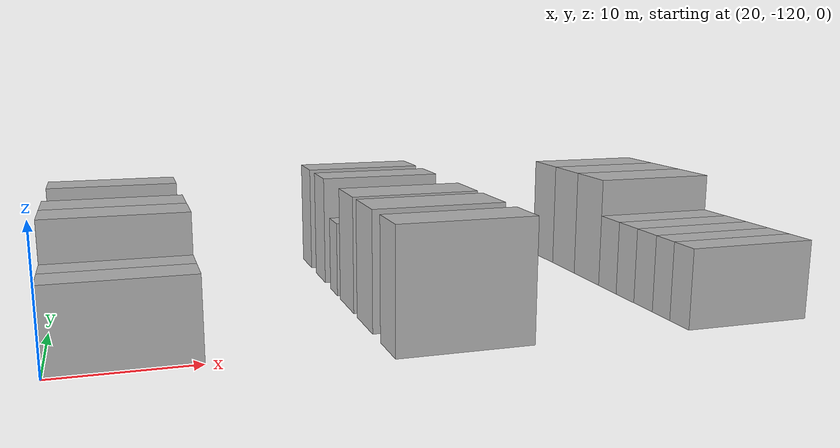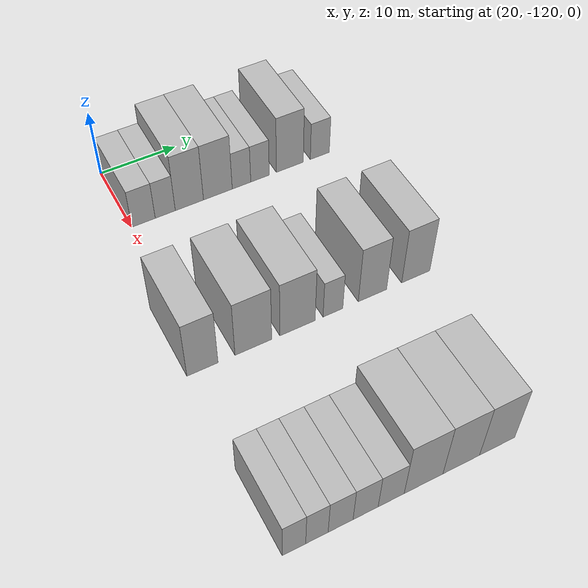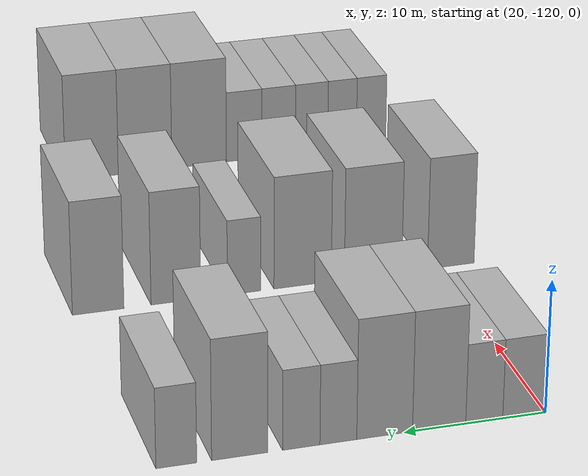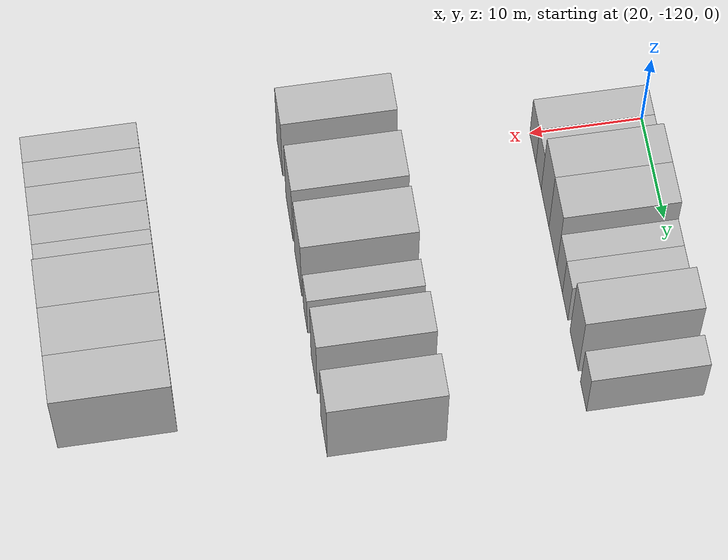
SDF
<sdf version="1.6">
 <world name="default">
  <model name="building_35">
   <static>1</static>
   <pose>25.0000 -118.4441 0 0.000000 0.000000 0.000000</pose>
   <link name="link">
    <pose>0 0 3.00 0 0 0</pose>
    <collision name="collision"><geometry><box><size>10.0000 2.9973 6.0000</size></box></geometry></collision>
    <visual name="visual">
     <cast_shadows>0</cast_shadows>
     <geometry><box><size>10.0000 2.9973 6.0000</size></box></geometry>
     <material>
      <script>
       <uri>model://HANNAS_wall/materials/scripts</uri>
       <uri>model://HANNAS_wall/materials/textures</uri>
       <name>vrc/HANNAS_wall</name>
      </script>
     </material>
    </visual>
   </link>
  </model>
  <model name="building_36">
   <static>1</static>
   <pose>25.0000 -115.6381 0 0.000000 0.000000 0.000000</pose>
   <link name="link">
    <pose>0 0 3.00 0 0 0</pose>
    <collision name="collision"><geometry><box><size>10.0000 2.6147 6.0000</size></box></geometry></collision>
    <visual name="visual">
     <cast_shadows>0</cast_shadows>
     <geometry><box><size>10.0000 2.6147 6.0000</size></box></geometry>
     <material>
      <script>
       <uri>model://HANNAS_wall/materials/scripts</uri>
       <uri>model://HANNAS_wall/materials/textures</uri>
       <name>vrc/HANNAS_wall</name>
      </script>
     </material>
    </visual>
   </link>
  </model>
  <model name="building_37">
   <static>1</static>
   <pose>25.0000 -112.4635 0 0.000000 0.000000 0.000000</pose>
   <link name="link">
    <pose>0 0 4.50 0 0 0</pose>
    <collision name="collision"><geometry><box><size>10.0000 3.7345 9.0000</size></box></geometry></collision>
    <visual name="visual">
     <cast_shadows>0</cast_shadows>
     <geometry><box><size>10.0000 3.7345 9.0000</size></box></geometry>
     <material>
      <script>
       <uri>model://HANNAS_wall/materials/scripts</uri>
       <uri>model://HANNAS_wall/materials/textures</uri>
       <name>vrc/HANNAS_wall</name>
      </script>
     </material>
    </visual>
   </link>
  </model>
  <model name="building_38">
   <static>1</static>
   <pose>25.0000 -108.6606 0 0.000000 0.000000 0.000000</pose>
   <link name="link">
    <pose>0 0 4.50 0 0 0</pose>
    <collision name="collision"><geometry><box><size>10.0000 3.8712 9.0000</size></box></geometry></collision>
    <visual name="visual">
     <cast_shadows>0</cast_shadows>
     <geometry><box><size>10.0000 3.8712 9.0000</size></box></geometry>
     <material>
      <script>
       <uri>model://HANNAS_wall/materials/scripts</uri>
       <uri>model://HANNAS_wall/materials/textures</uri>
       <name>vrc/HANNAS_wall</name>
      </script>
     </material>
    </visual>
   </link>
  </model>
  <model name="building_39">
   <static>1</static>
   <pose>25.0000 -105.4579 0 0.000000 0.000000 0.000000</pose>
   <link name="link">
    <pose>0 0 3.00 0 0 0</pose>
    <collision name="collision"><geometry><box><size>10.0000 2.5342 6.0000</size></box></geometry></collision>
    <visual name="visual">
     <cast_shadows>0</cast_shadows>
     <geometry><box><size>10.0000 2.5342 6.0000</size></box></geometry>
     <material>
      <script>
       <uri>model://HANNAS_wall/materials/scripts</uri>
       <uri>model://HANNAS_wall/materials/textures</uri>
       <name>vrc/HANNAS_wall</name>
      </script>
     </material>
    </visual>
   </link>
  </model>
  <model name="building_40">
   <static>1</static>
   <pose>25.0000 -102.9112 0 0.000000 0.000000 0.000000</pose>
   <link name="link">
    <pose>0 0 3.00 0 0 0</pose>
    <collision name="collision"><geometry><box><size>10.0000 2.5594 6.0000</size></box></geometry></collision>
    <visual name="visual">
     <cast_shadows>0</cast_shadows>
     <geometry><box><size>10.0000 2.5594 6.0000</size></box></geometry>
     <material>
      <script>
       <uri>model://HANNAS_wall/materials/scripts</uri>
       <uri>model://HANNAS_wall/materials/textures</uri>
       <name>vrc/HANNAS_wall</name>
      </script>
     </material>
    </visual>
   </link>
  </model>
  <model name="building_41">
   <static>1</static>
   <pose>25.0000 -98.7287 0 0.000000 0.000000 0.000000</pose>
   <link name="link">
    <pose>0 0 4.50 0 0 0</pose>
    <collision name="collision"><geometry><box><size>10.0000 3.8055 9.0000</size></box></geometry></collision>
    <visual name="visual">
     <cast_shadows>0</cast_shadows>
     <geometry><box><size>10.0000 3.8055 9.0000</size></box></geometry>
     <material>
      <script>
       <uri>model://HANNAS_wall/materials/scripts</uri>
       <uri>model://HANNAS_wall/materials/textures</uri>
       <name>vrc/HANNAS_wall</name>
      </script>
     </material>
    </visual>
   </link>
  </model>
  <model name="building_42">
   <static>1</static>
   <pose>25.0000 -94.4601 0 0.000000 0.000000 0.000000</pose>
   <link name="link">
    <pose>0 0 3.00 0 0 0</pose>
    <collision name="collision"><geometry><box><size>10.0000 2.7317 6.0000</size></box></geometry></collision>
    <visual name="visual">
     <cast_shadows>0</cast_shadows>
     <geometry><box><size>10.0000 2.7317 6.0000</size></box></geometry>
     <material>
      <script>
       <uri>model://HANNAS_wall/materials/scripts</uri>
       <uri>model://HANNAS_wall/materials/textures</uri>
       <name>vrc/HANNAS_wall</name>
      </script>
     </material>
    </visual>
   </link>
  </model>
  <model name="building_152">
   <static>1</static>
   <pose>47.0000 -120.8456 0 0.000000 0.000000 0.000000</pose>
   <link name="link">
    <pose>0 0 4.50 0 0 0</pose>
    <collision name="collision"><geometry><box><size>10.0000 3.6336 9.0000</size></box></geometry></collision>
    <visual name="visual">
     <cast_shadows>0</cast_shadows>
     <geometry><box><size>10.0000 3.6336 9.0000</size></box></geometry>
     <material>
      <script>
       <uri>model://HANNAS_wall/materials/scripts</uri>
       <uri>model://HANNAS_wall/materials/textures</uri>
       <name>vrc/HANNAS_wall</name>
      </script>
     </material>
    </visual>
   </link>
  </model>
  <model name="building_153">
   <static>1</static>
   <pose>47.0000 -114.8185 0 0.000000 0.000000 0.000000</pose>
   <link name="link">
    <pose>0 0 4.50 0 0 0</pose>
    <collision name="collision"><geometry><box><size>10.0000 4.4204 9.0000</size></box></geometry></collision>
    <visual name="visual">
     <cast_shadows>0</cast_shadows>
     <geometry><box><size>10.0000 4.4204 9.0000</size></box></geometry>
     <material>
      <script>
       <uri>model://HANNAS_wall/materials/scripts</uri>
       <uri>model://HANNAS_wall/materials/textures</uri>
       <name>vrc/HANNAS_wall</name>
      </script>
     </material>
    </visual>
   </link>
  </model>
  <model name="building_154">
   <static>1</static>
   <pose>47.0000 -109.4254 0 0.000000 0.000000 0.000000</pose>
   <link name="link">
    <pose>0 0 4.50 0 0 0</pose>
    <collision name="collision"><geometry><box><size>10.0000 4.3659 9.0000</size></box></geometry></collision>
    <visual name="visual">
     <cast_shadows>0</cast_shadows>
     <geometry><box><size>10.0000 4.3659 9.0000</size></box></geometry>
     <material>
      <script>
       <uri>model://HANNAS_wall/materials/scripts</uri>
       <uri>model://HANNAS_wall/materials/textures</uri>
       <name>vrc/HANNAS_wall</name>
      </script>
     </material>
    </visual>
   </link>
  </model>
  <model name="building_155">
   <static>1</static>
   <pose>47.0000 -104.9879 0 0.000000 0.000000 0.000000</pose>
   <link name="link">
    <pose>0 0 3.00 0 0 0</pose>
    <collision name="collision"><geometry><box><size>10.0000 2.5090 6.0000</size></box></geometry></collision>
    <visual name="visual">
     <cast_shadows>0</cast_shadows>
     <geometry><box><size>10.0000 2.5090 6.0000</size></box></geometry>
     <material>
      <script>
       <uri>model://HANNAS_wall/materials/scripts</uri>
       <uri>model://HANNAS_wall/materials/textures</uri>
       <name>vrc/HANNAS_wall</name>
      </script>
     </material>
    </visual>
   </link>
  </model>
  <model name="building_156">
   <static>1</static>
   <pose>47.0000 -99.8873 0 0.000000 0.000000 0.000000</pose>
   <link name="link">
    <pose>0 0 4.50 0 0 0</pose>
    <collision name="collision"><geometry><box><size>10.0000 3.6922 9.0000</size></box></geometry></collision>
    <visual name="visual">
     <cast_shadows>0</cast_shadows>
     <geometry><box><size>10.0000 3.6922 9.0000</size></box></geometry>
     <material>
      <script>
       <uri>model://HANNAS_wall/materials/scripts</uri>
       <uri>model://HANNAS_wall/materials/textures</uri>
       <name>vrc/HANNAS_wall</name>
      </script>
     </material>
    </visual>
   </link>
  </model>
  <model name="building_157">
   <static>1</static>
   <pose>47.0000 -94.1501 0 0.000000 0.000000 0.000000</pose>
   <link name="link">
    <pose>0 0 4.50 0 0 0</pose>
    <collision name="collision"><geometry><box><size>10.0000 3.7822 9.0000</size></box></geometry></collision>
    <visual name="visual">
     <cast_shadows>0</cast_shadows>
     <geometry><box><size>10.0000 3.7822 9.0000</size></box></geometry>
     <material>
      <script>
       <uri>model://HANNAS_wall/materials/scripts</uri>
       <uri>model://HANNAS_wall/materials/textures</uri>
       <name>vrc/HANNAS_wall</name>
      </script>
     </material>
    </visual>
   </link>
  </model>
  <model name="building_272">
   <static>1</static>
   <pose>69.0000 -121.5892 0 0.000000 0.000000 0.000000</pose>
   <link name="link">
    <pose>0 0 3.00 0 0 0</pose>
    <collision name="collision"><geometry><box><size>10.0000 2.4815 6.0000</size></box></geometry></collision>
    <visual name="visual">
     <cast_shadows>0</cast_shadows>
     <geometry><box><size>10.0000 2.4815 6.0000</size></box></geometry>
     <material>
      <script>
       <uri>model://HANNAS_wall/materials/scripts</uri>
       <uri>model://HANNAS_wall/materials/textures</uri>
       <name>vrc/HANNAS_wall</name>
      </script>
     </material>
    </visual>
   </link>
  </model>
  <model name="building_273">
   <static>1</static>
   <pose>69.0000 -119.1459 0 0.000000 0.000000 0.000000</pose>
   <link name="link">
    <pose>0 0 3.00 0 0 0</pose>
    <collision name="collision"><geometry><box><size>10.0000 2.4050 6.0000</size></box></geometry></collision>
    <visual name="visual">
     <cast_shadows>0</cast_shadows>
     <geometry><box><size>10.0000 2.4050 6.0000</size></box></geometry>
     <material>
      <script>
       <uri>model://HANNAS_wall/materials/scripts</uri>
       <uri>model://HANNAS_wall/materials/textures</uri>
       <name>vrc/HANNAS_wall</name>
      </script>
     </material>
    </visual>
   </link>
  </model>
  <model name="building_274">
   <static>1</static>
   <pose>69.0000 -116.5830 0 0.000000 0.000000 0.000000</pose>
   <link name="link">
    <pose>0 0 3.00 0 0 0</pose>
    <collision name="collision"><geometry><box><size>10.0000 2.7207 6.0000</size></box></geometry></collision>
    <visual name="visual">
     <cast_shadows>0</cast_shadows>
     <geometry><box><size>10.0000 2.7207 6.0000</size></box></geometry>
     <material>
      <script>
       <uri>model://HANNAS_wall/materials/scripts</uri>
       <uri>model://HANNAS_wall/materials/textures</uri>
       <name>vrc/HANNAS_wall</name>
      </script>
     </material>
    </visual>
   </link>
  </model>
  <model name="building_275">
   <static>1</static>
   <pose>69.0000 -113.8320 0 0.000000 0.000000 0.000000</pose>
   <link name="link">
    <pose>0 0 3.00 0 0 0</pose>
    <collision name="collision"><geometry><box><size>10.0000 2.7813 6.0000</size></box></geometry></collision>
    <visual name="visual">
     <cast_shadows>0</cast_shadows>
     <geometry><box><size>10.0000 2.7813 6.0000</size></box></geometry>
     <material>
      <script>
       <uri>model://HANNAS_wall/materials/scripts</uri>
       <uri>model://HANNAS_wall/materials/textures</uri>
       <name>vrc/HANNAS_wall</name>
      </script>
     </material>
    </visual>
   </link>
  </model>
  <model name="building_276">
   <static>1</static>
   <pose>69.0000 -110.9694 0 0.000000 0.000000 0.000000</pose>
   <link name="link">
    <pose>0 0 3.00 0 0 0</pose>
    <collision name="collision"><geometry><box><size>10.0000 2.9440 6.0000</size></box></geometry></collision>
    <visual name="visual">
     <cast_shadows>0</cast_shadows>
     <geometry><box><size>10.0000 2.9440 6.0000</size></box></geometry>
     <material>
      <script>
       <uri>model://HANNAS_wall/materials/scripts</uri>
       <uri>model://HANNAS_wall/materials/textures</uri>
       <name>vrc/HANNAS_wall</name>
      </script>
     </material>
    </visual>
   </link>
  </model>
  <model name="building_277">
   <static>1</static>
   <pose>69.0000 -107.2572 0 0.000000 0.000000 0.000000</pose>
   <link name="link">
    <pose>0 0 4.50 0 0 0</pose>
    <collision name="collision"><geometry><box><size>10.0000 4.4804 9.0000</size></box></geometry></collision>
    <visual name="visual">
     <cast_shadows>0</cast_shadows>
     <geometry><box><size>10.0000 4.4804 9.0000</size></box></geometry>
     <material>
      <script>
       <uri>model://HANNAS_wall/materials/scripts</uri>
       <uri>model://HANNAS_wall/materials/textures</uri>
       <name>vrc/HANNAS_wall</name>
      </script>
     </material>
    </visual>
   </link>
  </model>
  <model name="building_278">
   <static>1</static>
   <pose>69.0000 -102.8430 0 0.000000 0.000000 0.000000</pose>
   <link name="link">
    <pose>0 0 4.50 0 0 0</pose>
    <collision name="collision"><geometry><box><size>10.0000 4.3479 9.0000</size></box></geometry></collision>
    <visual name="visual">
     <cast_shadows>0</cast_shadows>
     <geometry><box><size>10.0000 4.3479 9.0000</size></box></geometry>
     <material>
      <script>
       <uri>model://HANNAS_wall/materials/scripts</uri>
       <uri>model://HANNAS_wall/materials/textures</uri>
       <name>vrc/HANNAS_wall</name>
      </script>
     </material>
    </visual>
   </link>
  </model>
  <model name="building_279">
   <static>1</static>
   <pose>69.0000 -98.5287 0 0.000000 0.000000 0.000000</pose>
   <link name="link">
    <pose>0 0 4.50 0 0 0</pose>
    <collision name="collision"><geometry><box><size>10.0000 4.2807 9.0000</size></box></geometry></collision>
    <visual name="visual">
     <cast_shadows>0</cast_shadows>
     <geometry><box><size>10.0000 4.2807 9.0000</size></box></geometry>
     <material>
      <script>
       <uri>model://HANNAS_wall/materials/scripts</uri>
       <uri>model://HANNAS_wall/materials/textures</uri>
       <name>vrc/HANNAS_wall</name>
      </script>
     </material>
    </visual>
   </link>
  </model>
 </world>
</sdf>
